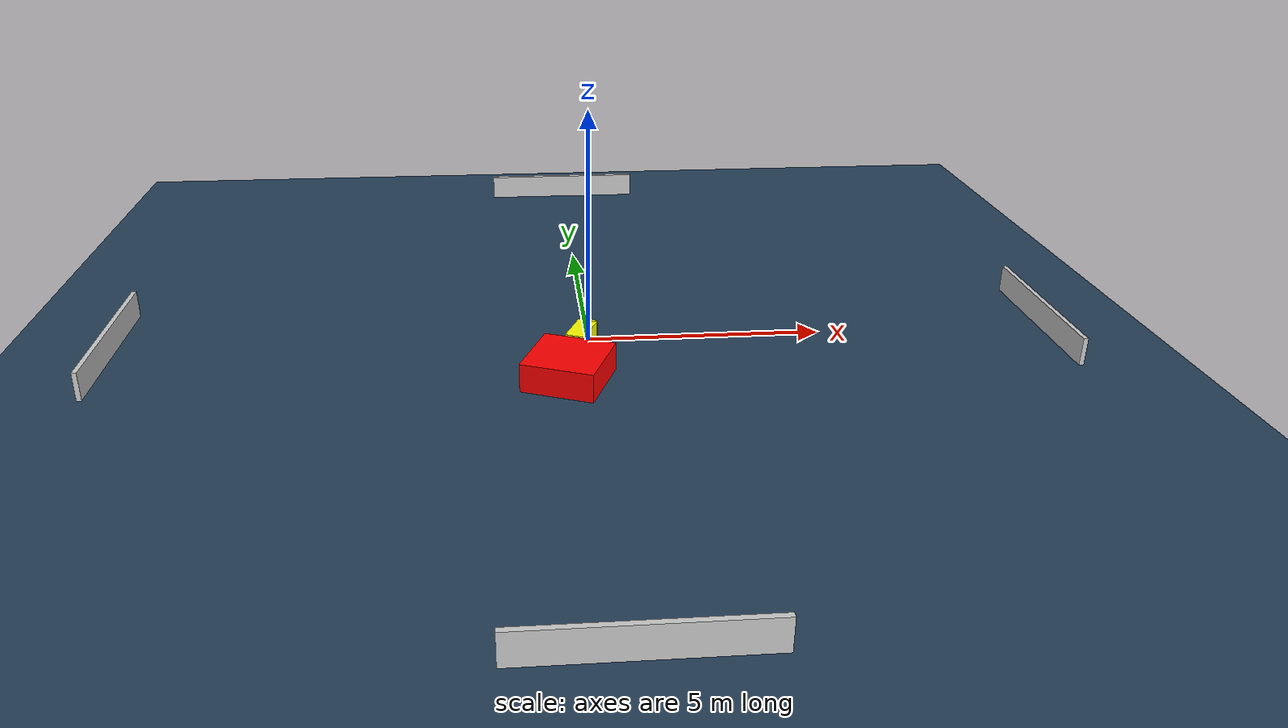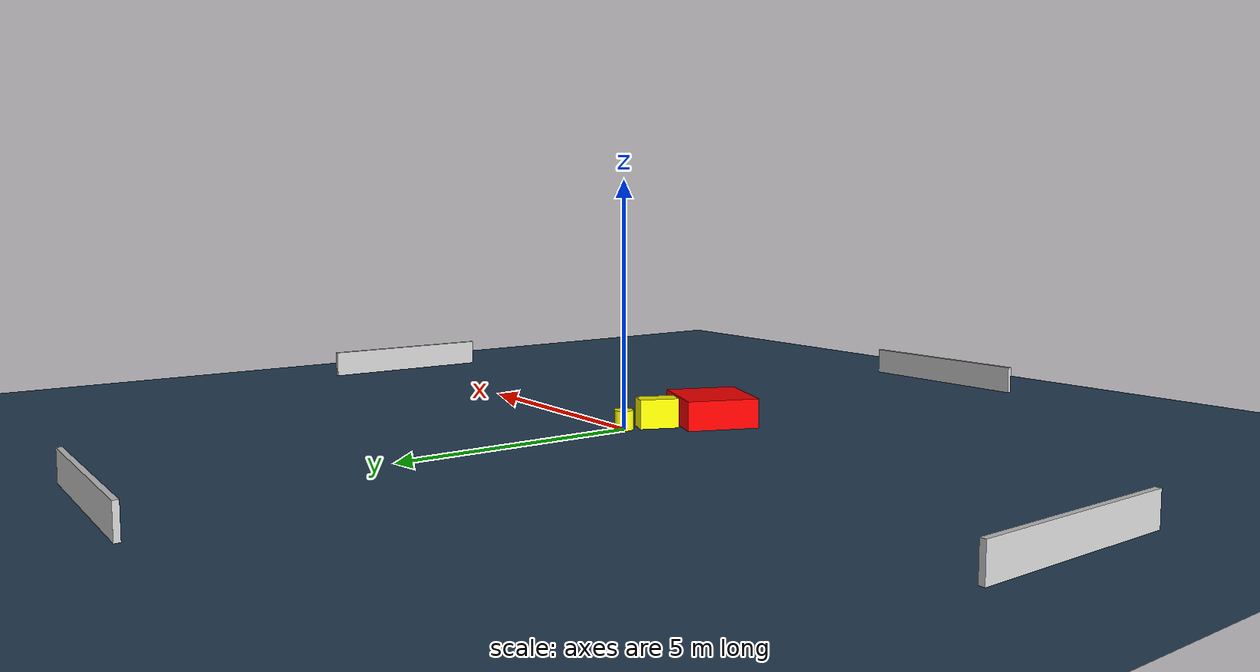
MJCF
<?xml version="1.0" ?>
<mujoco model="generated_environment">
  <option timestep="0.01" integrator="RK4" cone="elliptic"/>
  <default>
    <geom density="1"/>
  </default>
  <asset>
    <texture builtin="gradient" height="3072" name="skybox" rgb1="0.3 0.5 0.7" rgb2="0 0 0" type="skybox" width="512"/>
    <texture builtin="checker" height="300" name="groundplane" rgb1="0.2 0.3 0.4" rgb2="0.1 0.2 0.3" type="2d" width="300"/>
    <material name="groundplane" reflectance="0.2" texrepeat="5 5" texture="groundplane"/>
  </asset>
  <worldbody>
    <light dir="0 0 -1" directional="true" pos="0 0 1.5"/>
    <geom condim="3" friction="0.5 0.005 0.001" material="groundplane" name="floor" pos="0 0 0" size="0 0 0.05" type="plane"/>
    <body name="walls">
      <geom name="wall_1" condim="4" pos="-10.0 0.0 0.3" rgba="0.800000011920929 0.800000011920929 0.800000011920929 1.0" size="0.05 2.0 0.3" type="box"/>
      <geom name="wall_2" condim="4" pos="10.0 0.0 0.3" rgba="0.800000011920929 0.800000011920929 0.800000011920929 1.0" size="0.05 2.0 0.3" type="box"/>
      <geom name="wall_3" condim="4" pos="0.0 -10.0 0.3" rgba="0.800000011920929 0.800000011920929 0.800000011920929 1.0" size="2.0 0.05 0.3" type="box"/>
      <geom name="wall_4" condim="4" pos="0.0 10.0 0.3" rgba="0.800000011920929 0.800000011920929 0.800000011920929 1.0" size="2.0 0.05 0.3" type="box"/>
    </body>
    <body name="robot">
      <joint name="joint_x" type="slide" pos="0 0 0" axis="1 0 0"/>
      <joint name="joint_y" type="slide" pos="0 0 0" axis="0 1 0"/>
      <geom name="robot" type="cylinder" pos="0.0 0.0 0.2" size="0.2 0.2 0.0" mass="5.0" friction="1.0 0.005 0.0001" condim="4" rgba="1.0 1.0 0.0 1.0"/>
    </body>
    <body name="obstacle_1_movable">
      <geom name="obstacle_1_movable" condim="4" pos="-0.19496028668617396 -0.6932535042913991 0.3" euler="0 0 246.5195583106403" friction="0.0 0.005 0.001" rgba="1.0 1.0 0.0 1.0" size="0.40288214563111047 0.2069024354948709 0.3" type="box" mass="0.1"/>
      <joint type="free"/>
    </body>
    <body name="obstacle_2_static">
      <geom name="obstacle_2_static" condim="4" pos="-0.5347735749488017 -1.8679527392997741 0.3" euler="0 0 67.84140512663967" friction="0.0 0.005 0.001" rgba="1.0 0.0 0.0 1.0" size="0.7478301002966985 0.7600600356881906 0.3" type="box"/>
    </body>
  </worldbody>
  <actuator>
    <motor name="actuator_x" joint="joint_x" gear="1" ctrlrange="-1 1"/>
    <motor name="actuator_y" joint="joint_y" gear="1" ctrlrange="-1 1"/>
  </actuator>
</mujoco>
